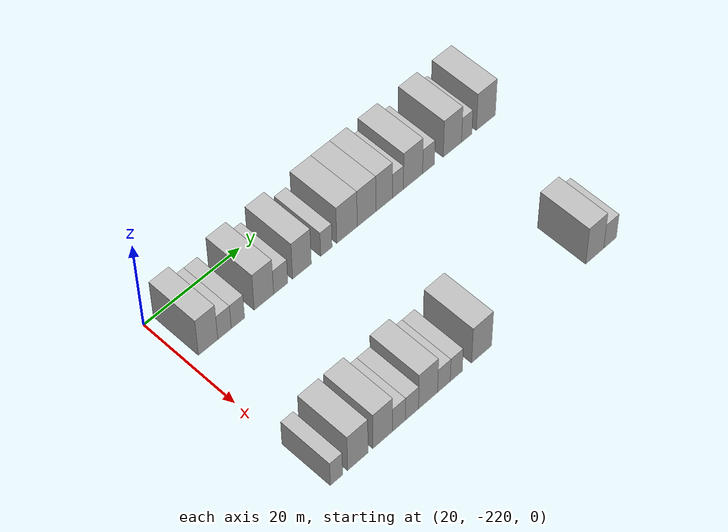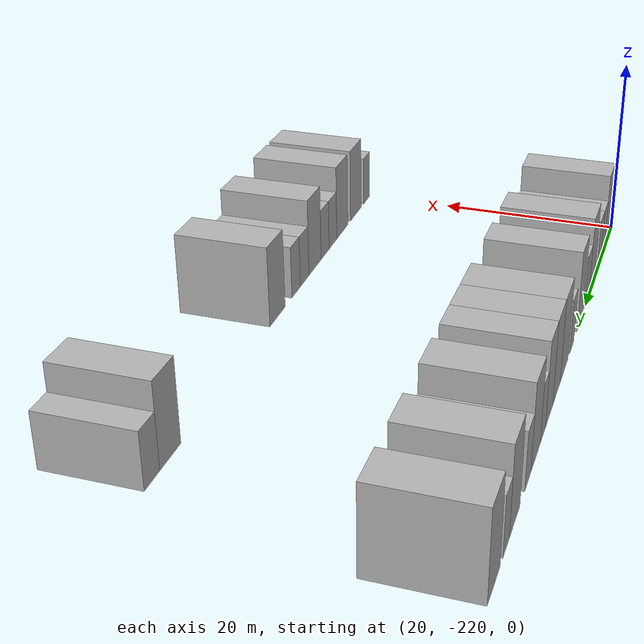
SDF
<sdf version="1.6">
 <world name="default">
  <model name="building_1">
   <static>1</static>
   <pose>25.0000 -216.0146 0 0.000000 0.000000 0.000000</pose>
   <link name="link">
    <pose>0 0 4.50 0 0 0</pose>
    <collision name="collision"><geometry><box><size>10.0000 3.9708 9.0000</size></box></geometry></collision>
    <visual name="visual">
     <cast_shadows>0</cast_shadows>
     <geometry><box><size>10.0000 3.9708 9.0000</size></box></geometry>
     <material>
      <script>
       <uri>model://HANNAS_wall/materials/scripts</uri>
       <uri>model://HANNAS_wall/materials/textures</uri>
       <name>vrc/HANNAS_wall</name>
      </script>
     </material>
    </visual>
   </link>
  </model>
  <model name="building_2">
   <static>1</static>
   <pose>25.0000 -212.6377 0 0.000000 0.000000 0.000000</pose>
   <link name="link">
    <pose>0 0 3.00 0 0 0</pose>
    <collision name="collision"><geometry><box><size>10.0000 2.7830 6.0000</size></box></geometry></collision>
    <visual name="visual">
     <cast_shadows>0</cast_shadows>
     <geometry><box><size>10.0000 2.7830 6.0000</size></box></geometry>
     <material>
      <script>
       <uri>model://HANNAS_wall/materials/scripts</uri>
       <uri>model://HANNAS_wall/materials/textures</uri>
       <name>vrc/HANNAS_wall</name>
      </script>
     </material>
    </visual>
   </link>
  </model>
  <model name="building_3">
   <static>1</static>
   <pose>25.0000 -209.8646 0 0.000000 0.000000 0.000000</pose>
   <link name="link">
    <pose>0 0 3.00 0 0 0</pose>
    <collision name="collision"><geometry><box><size>10.0000 2.7633 6.0000</size></box></geometry></collision>
    <visual name="visual">
     <cast_shadows>0</cast_shadows>
     <geometry><box><size>10.0000 2.7633 6.0000</size></box></geometry>
     <material>
      <script>
       <uri>model://HANNAS_wall/materials/scripts</uri>
       <uri>model://HANNAS_wall/materials/textures</uri>
       <name>vrc/HANNAS_wall</name>
      </script>
     </material>
    </visual>
   </link>
  </model>
  <model name="building_4">
   <static>1</static>
   <pose>25.0000 -204.4368 0 0.000000 0.000000 0.000000</pose>
   <link name="link">
    <pose>0 0 4.50 0 0 0</pose>
    <collision name="collision"><geometry><box><size>10.0000 4.0923 9.0000</size></box></geometry></collision>
    <visual name="visual">
     <cast_shadows>0</cast_shadows>
     <geometry><box><size>10.0000 4.0923 9.0000</size></box></geometry>
     <material>
      <script>
       <uri>model://HANNAS_wall/materials/scripts</uri>
       <uri>model://HANNAS_wall/materials/textures</uri>
       <name>vrc/HANNAS_wall</name>
      </script>
     </material>
    </visual>
   </link>
  </model>
  <model name="building_5">
   <static>1</static>
   <pose>25.0000 -200.8921 0 0.000000 0.000000 0.000000</pose>
   <link name="link">
    <pose>0 0 3.00 0 0 0</pose>
    <collision name="collision"><geometry><box><size>10.0000 2.9970 6.0000</size></box></geometry></collision>
    <visual name="visual">
     <cast_shadows>0</cast_shadows>
     <geometry><box><size>10.0000 2.9970 6.0000</size></box></geometry>
     <material>
      <script>
       <uri>model://HANNAS_wall/materials/scripts</uri>
       <uri>model://HANNAS_wall/materials/textures</uri>
       <name>vrc/HANNAS_wall</name>
      </script>
     </material>
    </visual>
   </link>
  </model>
  <model name="building_6">
   <static>1</static>
   <pose>25.0000 -196.3850 0 0.000000 0.000000 0.000000</pose>
   <link name="link">
    <pose>0 0 4.50 0 0 0</pose>
    <collision name="collision"><geometry><box><size>10.0000 4.0172 9.0000</size></box></geometry></collision>
    <visual name="visual">
     <cast_shadows>0</cast_shadows>
     <geometry><box><size>10.0000 4.0172 9.0000</size></box></geometry>
     <material>
      <script>
       <uri>model://HANNAS_wall/materials/scripts</uri>
       <uri>model://HANNAS_wall/materials/textures</uri>
       <name>vrc/HANNAS_wall</name>
      </script>
     </material>
    </visual>
   </link>
  </model>
  <model name="building_7">
   <static>1</static>
   <pose>25.0000 -191.1398 0 0.000000 0.000000 0.000000</pose>
   <link name="link">
    <pose>0 0 3.00 0 0 0</pose>
    <collision name="collision"><geometry><box><size>10.0000 2.4732 6.0000</size></box></geometry></collision>
    <visual name="visual">
     <cast_shadows>0</cast_shadows>
     <geometry><box><size>10.0000 2.4732 6.0000</size></box></geometry>
     <material>
      <script>
       <uri>model://HANNAS_wall/materials/scripts</uri>
       <uri>model://HANNAS_wall/materials/textures</uri>
       <name>vrc/HANNAS_wall</name>
      </script>
     </material>
    </visual>
   </link>
  </model>
  <model name="building_8">
   <static>1</static>
   <pose>25.0000 -186.6611 0 0.000000 0.000000 0.000000</pose>
   <link name="link">
    <pose>0 0 4.50 0 0 0</pose>
    <collision name="collision"><geometry><box><size>10.0000 4.4841 9.0000</size></box></geometry></collision>
    <visual name="visual">
     <cast_shadows>0</cast_shadows>
     <geometry><box><size>10.0000 4.4841 9.0000</size></box></geometry>
     <material>
      <script>
       <uri>model://HANNAS_wall/materials/scripts</uri>
       <uri>model://HANNAS_wall/materials/textures</uri>
       <name>vrc/HANNAS_wall</name>
      </script>
     </material>
    </visual>
   </link>
  </model>
  <model name="building_9">
   <static>1</static>
   <pose>25.0000 -182.3765 0 0.000000 0.000000 0.000000</pose>
   <link name="link">
    <pose>0 0 4.50 0 0 0</pose>
    <collision name="collision"><geometry><box><size>10.0000 4.0853 9.0000</size></box></geometry></collision>
    <visual name="visual">
     <cast_shadows>0</cast_shadows>
     <geometry><box><size>10.0000 4.0853 9.0000</size></box></geometry>
     <material>
      <script>
       <uri>model://HANNAS_wall/materials/scripts</uri>
       <uri>model://HANNAS_wall/materials/textures</uri>
       <name>vrc/HANNAS_wall</name>
      </script>
     </material>
    </visual>
   </link>
  </model>
  <model name="building_10">
   <static>1</static>
   <pose>25.0000 -178.4873 0 0.000000 0.000000 0.000000</pose>
   <link name="link">
    <pose>0 0 4.50 0 0 0</pose>
    <collision name="collision"><geometry><box><size>10.0000 3.6931 9.0000</size></box></geometry></collision>
    <visual name="visual">
     <cast_shadows>0</cast_shadows>
     <geometry><box><size>10.0000 3.6931 9.0000</size></box></geometry>
     <material>
      <script>
       <uri>model://HANNAS_wall/materials/scripts</uri>
       <uri>model://HANNAS_wall/materials/textures</uri>
       <name>vrc/HANNAS_wall</name>
      </script>
     </material>
    </visual>
   </link>
  </model>
  <model name="building_11">
   <static>1</static>
   <pose>25.0000 -175.4033 0 0.000000 0.000000 0.000000</pose>
   <link name="link">
    <pose>0 0 3.00 0 0 0</pose>
    <collision name="collision"><geometry><box><size>10.0000 2.4749 6.0000</size></box></geometry></collision>
    <visual name="visual">
     <cast_shadows>0</cast_shadows>
     <geometry><box><size>10.0000 2.4749 6.0000</size></box></geometry>
     <material>
      <script>
       <uri>model://HANNAS_wall/materials/scripts</uri>
       <uri>model://HANNAS_wall/materials/textures</uri>
       <name>vrc/HANNAS_wall</name>
      </script>
     </material>
    </visual>
   </link>
  </model>
  <model name="building_12">
   <static>1</static>
   <pose>25.0000 -171.9986 0 0.000000 0.000000 0.000000</pose>
   <link name="link">
    <pose>0 0 4.50 0 0 0</pose>
    <collision name="collision"><geometry><box><size>10.0000 4.3345 9.0000</size></box></geometry></collision>
    <visual name="visual">
     <cast_shadows>0</cast_shadows>
     <geometry><box><size>10.0000 4.3345 9.0000</size></box></geometry>
     <material>
      <script>
       <uri>model://HANNAS_wall/materials/scripts</uri>
       <uri>model://HANNAS_wall/materials/textures</uri>
       <name>vrc/HANNAS_wall</name>
      </script>
     </material>
    </visual>
   </link>
  </model>
  <model name="building_13">
   <static>1</static>
   <pose>25.0000 -168.4795 0 0.000000 0.000000 0.000000</pose>
   <link name="link">
    <pose>0 0 3.00 0 0 0</pose>
    <collision name="collision"><geometry><box><size>10.0000 2.7037 6.0000</size></box></geometry></collision>
    <visual name="visual">
     <cast_shadows>0</cast_shadows>
     <geometry><box><size>10.0000 2.7037 6.0000</size></box></geometry>
     <material>
      <script>
       <uri>model://HANNAS_wall/materials/scripts</uri>
       <uri>model://HANNAS_wall/materials/textures</uri>
       <name>vrc/HANNAS_wall</name>
      </script>
     </material>
    </visual>
   </link>
  </model>
  <model name="building_14">
   <static>1</static>
   <pose>25.0000 -163.0207 0 0.000000 0.000000 0.000000</pose>
   <link name="link">
    <pose>0 0 4.50 0 0 0</pose>
    <collision name="collision"><geometry><box><size>10.0000 4.2139 9.0000</size></box></geometry></collision>
    <visual name="visual">
     <cast_shadows>0</cast_shadows>
     <geometry><box><size>10.0000 4.2139 9.0000</size></box></geometry>
     <material>
      <script>
       <uri>model://HANNAS_wall/materials/scripts</uri>
       <uri>model://HANNAS_wall/materials/textures</uri>
       <name>vrc/HANNAS_wall</name>
      </script>
     </material>
    </visual>
   </link>
  </model>
  <model name="building_15">
   <static>1</static>
   <pose>25.0000 -159.7039 0 0.000000 0.000000 0.000000</pose>
   <link name="link">
    <pose>0 0 3.00 0 0 0</pose>
    <collision name="collision"><geometry><box><size>10.0000 2.4196 6.0000</size></box></geometry></collision>
    <visual name="visual">
     <cast_shadows>0</cast_shadows>
     <geometry><box><size>10.0000 2.4196 6.0000</size></box></geometry>
     <material>
      <script>
       <uri>model://HANNAS_wall/materials/scripts</uri>
       <uri>model://HANNAS_wall/materials/textures</uri>
       <name>vrc/HANNAS_wall</name>
      </script>
     </material>
    </visual>
   </link>
  </model>
  <model name="building_16">
   <static>1</static>
   <pose>25.0000 -155.2690 0 0.000000 0.000000 0.000000</pose>
   <link name="link">
    <pose>0 0 4.50 0 0 0</pose>
    <collision name="collision"><geometry><box><size>10.0000 4.4502 9.0000</size></box></geometry></collision>
    <visual name="visual">
     <cast_shadows>0</cast_shadows>
     <geometry><box><size>10.0000 4.4502 9.0000</size></box></geometry>
     <material>
      <script>
       <uri>model://HANNAS_wall/materials/scripts</uri>
       <uri>model://HANNAS_wall/materials/textures</uri>
       <name>vrc/HANNAS_wall</name>
      </script>
     </material>
    </visual>
   </link>
  </model>
  <model name="building_112">
   <static>1</static>
   <pose>55.0000 -218.7478 0 0.000000 0.000000 0.000000</pose>
   <link name="link">
    <pose>0 0 3.00 0 0 0</pose>
    <collision name="collision"><geometry><box><size>10.0000 2.5045 6.0000</size></box></geometry></collision>
    <visual name="visual">
     <cast_shadows>0</cast_shadows>
     <geometry><box><size>10.0000 2.5045 6.0000</size></box></geometry>
     <material>
      <script>
       <uri>model://HANNAS_wall/materials/scripts</uri>
       <uri>model://HANNAS_wall/materials/textures</uri>
       <name>vrc/HANNAS_wall</name>
      </script>
     </material>
    </visual>
   </link>
  </model>
  <model name="building_113">
   <static>1</static>
   <pose>55.0000 -214.3960 0 0.000000 0.000000 0.000000</pose>
   <link name="link">
    <pose>0 0 4.50 0 0 0</pose>
    <collision name="collision"><geometry><box><size>10.0000 4.1990 9.0000</size></box></geometry></collision>
    <visual name="visual">
     <cast_shadows>0</cast_shadows>
     <geometry><box><size>10.0000 4.1990 9.0000</size></box></geometry>
     <material>
      <script>
       <uri>model://HANNAS_wall/materials/scripts</uri>
       <uri>model://HANNAS_wall/materials/textures</uri>
       <name>vrc/HANNAS_wall</name>
      </script>
     </material>
    </visual>
   </link>
  </model>
  <model name="building_114">
   <static>1</static>
   <pose>55.0000 -209.2582 0 0.000000 0.000000 0.000000</pose>
   <link name="link">
    <pose>0 0 4.50 0 0 0</pose>
    <collision name="collision"><geometry><box><size>10.0000 4.0765 9.0000</size></box></geometry></collision>
    <visual name="visual">
     <cast_shadows>0</cast_shadows>
     <geometry><box><size>10.0000 4.0765 9.0000</size></box></geometry>
     <material>
      <script>
       <uri>model://HANNAS_wall/materials/scripts</uri>
       <uri>model://HANNAS_wall/materials/textures</uri>
       <name>vrc/HANNAS_wall</name>
      </script>
     </material>
    </visual>
   </link>
  </model>
  <model name="building_115">
   <static>1</static>
   <pose>55.0000 -205.8682 0 0.000000 0.000000 0.000000</pose>
   <link name="link">
    <pose>0 0 3.00 0 0 0</pose>
    <collision name="collision"><geometry><box><size>10.0000 2.7035 6.0000</size></box></geometry></collision>
    <visual name="visual">
     <cast_shadows>0</cast_shadows>
     <geometry><box><size>10.0000 2.7035 6.0000</size></box></geometry>
     <material>
      <script>
       <uri>model://HANNAS_wall/materials/scripts</uri>
       <uri>model://HANNAS_wall/materials/textures</uri>
       <name>vrc/HANNAS_wall</name>
      </script>
     </material>
    </visual>
   </link>
  </model>
  <model name="building_116">
   <static>1</static>
   <pose>55.0000 -203.1440 0 0.000000 0.000000 0.000000</pose>
   <link name="link">
    <pose>0 0 3.00 0 0 0</pose>
    <collision name="collision"><geometry><box><size>10.0000 2.7449 6.0000</size></box></geometry></collision>
    <visual name="visual">
     <cast_shadows>0</cast_shadows>
     <geometry><box><size>10.0000 2.7449 6.0000</size></box></geometry>
     <material>
      <script>
       <uri>model://HANNAS_wall/materials/scripts</uri>
       <uri>model://HANNAS_wall/materials/textures</uri>
       <name>vrc/HANNAS_wall</name>
      </script>
     </material>
    </visual>
   </link>
  </model>
  <model name="building_117">
   <static>1</static>
   <pose>55.0000 -199.7453 0 0.000000 0.000000 0.000000</pose>
   <link name="link">
    <pose>0 0 4.50 0 0 0</pose>
    <collision name="collision"><geometry><box><size>10.0000 4.0525 9.0000</size></box></geometry></collision>
    <visual name="visual">
     <cast_shadows>0</cast_shadows>
     <geometry><box><size>10.0000 4.0525 9.0000</size></box></geometry>
     <material>
      <script>
       <uri>model://HANNAS_wall/materials/scripts</uri>
       <uri>model://HANNAS_wall/materials/textures</uri>
       <name>vrc/HANNAS_wall</name>
      </script>
     </material>
    </visual>
   </link>
  </model>
  <model name="building_118">
   <static>1</static>
   <pose>55.0000 -196.3720 0 0.000000 0.000000 0.000000</pose>
   <link name="link">
    <pose>0 0 3.00 0 0 0</pose>
    <collision name="collision"><geometry><box><size>10.0000 2.6942 6.0000</size></box></geometry></collision>
    <visual name="visual">
     <cast_shadows>0</cast_shadows>
     <geometry><box><size>10.0000 2.6942 6.0000</size></box></geometry>
     <material>
      <script>
       <uri>model://HANNAS_wall/materials/scripts</uri>
       <uri>model://HANNAS_wall/materials/textures</uri>
       <name>vrc/HANNAS_wall</name>
      </script>
     </material>
    </visual>
   </link>
  </model>
  <model name="building_119">
   <static>1</static>
   <pose>55.0000 -193.7164 0 0.000000 0.000000 0.000000</pose>
   <link name="link">
    <pose>0 0 3.00 0 0 0</pose>
    <collision name="collision"><geometry><box><size>10.0000 2.6168 6.0000</size></box></geometry></collision>
    <visual name="visual">
     <cast_shadows>0</cast_shadows>
     <geometry><box><size>10.0000 2.6168 6.0000</size></box></geometry>
     <material>
      <script>
       <uri>model://HANNAS_wall/materials/scripts</uri>
       <uri>model://HANNAS_wall/materials/textures</uri>
       <name>vrc/HANNAS_wall</name>
      </script>
     </material>
    </visual>
   </link>
  </model>
  <model name="building_120">
   <static>1</static>
   <pose>55.0000 -188.2296 0 0.000000 0.000000 0.000000</pose>
   <link name="link">
    <pose>0 0 4.50 0 0 0</pose>
    <collision name="collision"><geometry><box><size>10.0000 4.3569 9.0000</size></box></geometry></collision>
    <visual name="visual">
     <cast_shadows>0</cast_shadows>
     <geometry><box><size>10.0000 4.3569 9.0000</size></box></geometry>
     <material>
      <script>
       <uri>model://HANNAS_wall/materials/scripts</uri>
       <uri>model://HANNAS_wall/materials/textures</uri>
       <name>vrc/HANNAS_wall</name>
      </script>
     </material>
    </visual>
   </link>
  </model>
  <model name="building_121">
   <static>1</static>
   <pose>55.0000 -162.8104 0 0.000000 0.000000 0.000000</pose>
   <link name="link">
    <pose>0 0 4.50 0 0 0</pose>
    <collision name="collision"><geometry><box><size>10.0000 4.1604 9.0000</size></box></geometry></collision>
    <visual name="visual">
     <cast_shadows>0</cast_shadows>
     <geometry><box><size>10.0000 4.1604 9.0000</size></box></geometry>
     <material>
      <script>
       <uri>model://HANNAS_wall/materials/scripts</uri>
       <uri>model://HANNAS_wall/materials/textures</uri>
       <name>vrc/HANNAS_wall</name>
      </script>
     </material>
    </visual>
   </link>
  </model>
  <model name="building_122">
   <static>1</static>
   <pose>55.0000 -159.2647 0 0.000000 0.000000 0.000000</pose>
   <link name="link">
    <pose>0 0 3.00 0 0 0</pose>
    <collision name="collision"><geometry><box><size>10.0000 2.9310 6.0000</size></box></geometry></collision>
    <visual name="visual">
     <cast_shadows>0</cast_shadows>
     <geometry><box><size>10.0000 2.9310 6.0000</size></box></geometry>
     <material>
      <script>
       <uri>model://HANNAS_wall/materials/scripts</uri>
       <uri>model://HANNAS_wall/materials/textures</uri>
       <name>vrc/HANNAS_wall</name>
      </script>
     </material>
    </visual>
   </link>
  </model>
 </world>
</sdf>
